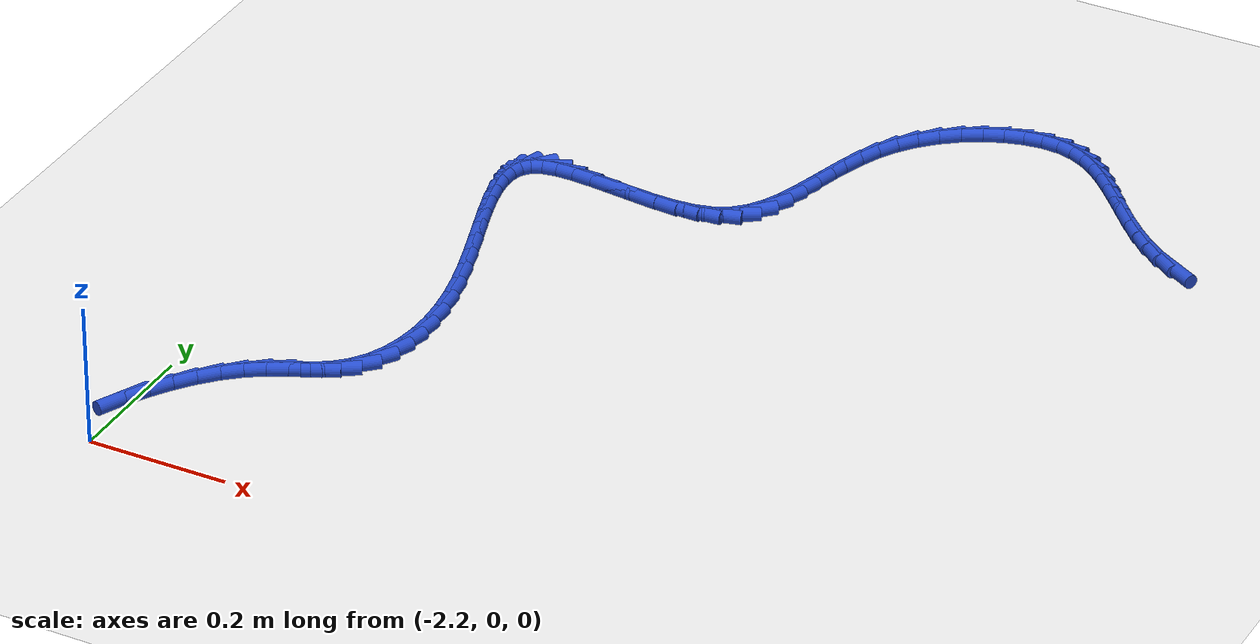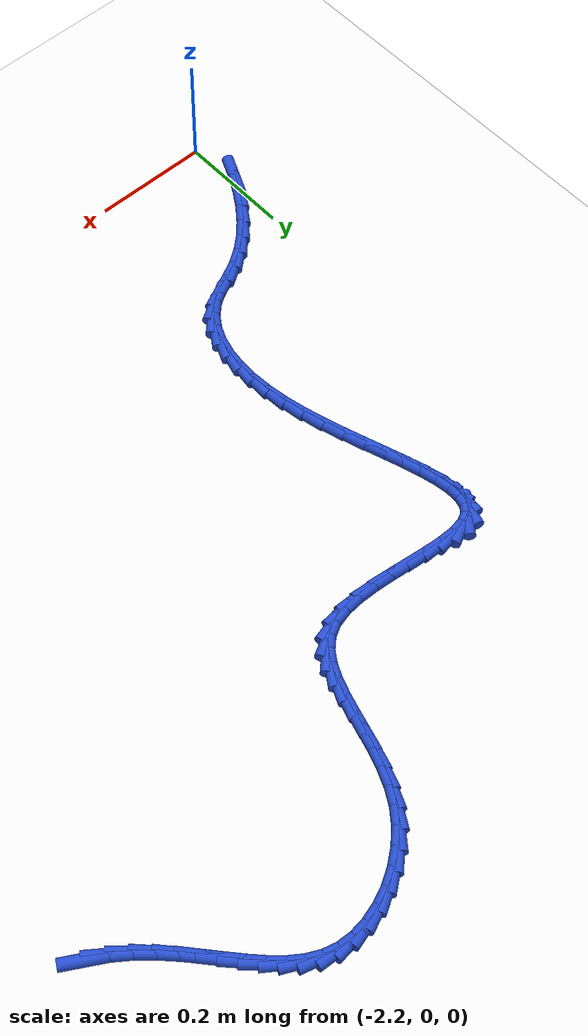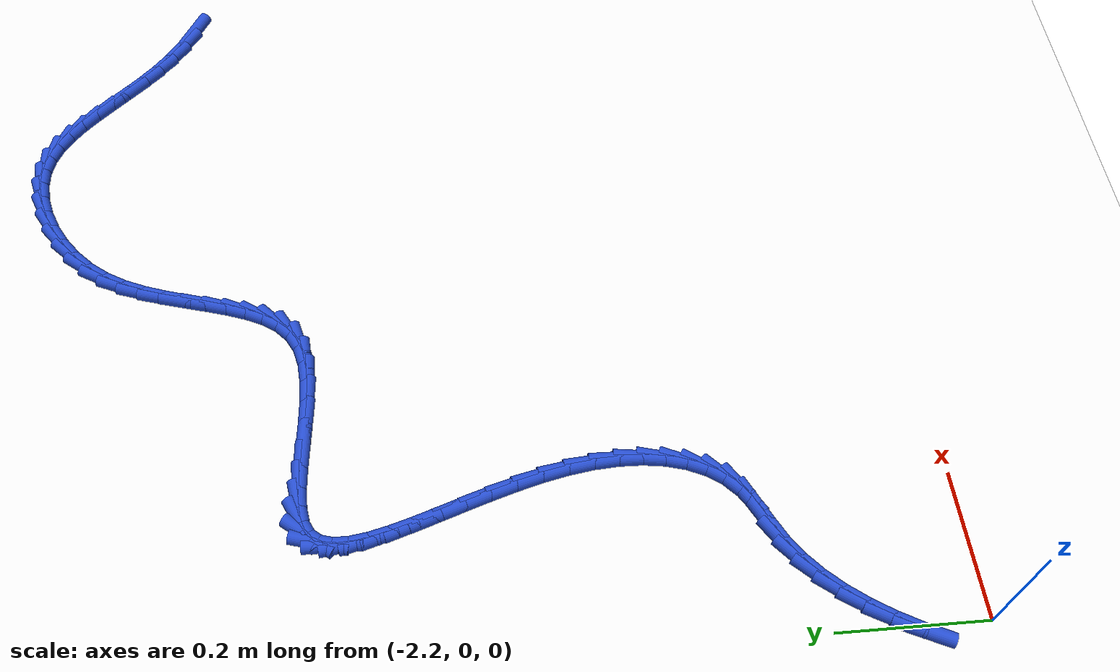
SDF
<sdf version="1.6">
 <world name="default">
  <model name="ground_plane">
   <static>1</static>
   <link name="link">
    <collision name="collision">
     <geometry><plane><normal>0 0 1</normal><size>100 100</size></plane></geometry>
     <surface><friction><ode><mu>100</mu><mu2>50</mu2></ode></friction></surface>
    </collision>
    <visual name="visual">
     <cast_shadows>0</cast_shadows>
     <geometry><plane><normal>0 0 1</normal><size>100 100</size></plane></geometry>
     <material>
      <script><uri>file://media/materials/scripts/gazebo.material</uri><name>Gazebo/WhiteGlow</name></script>
     </material>
    </visual>
   </link>
  </model>
  <model name="line">
   <link name="link_73">
    <pose>-1.1377716730741774 1.010143701158525 0.01 0 1.57 -0.5291703141802985</pose>
    <collision name="collision">
     <geometry><cylinder><radius>0.01</radius><length>0.08</length></cylinder></geometry>
    </collision>
    <visual name="visual">
     <material>
      <script><name>Gazebo/Blue</name><uri>file://media/materials/scripts/gazebo.material</uri></script>
     </material>
     <geometry><cylinder><radius>0.01</radius><length>0.08</length></cylinder></geometry>
    </visual>
   </link>
   <link name="link_74">
    <pose>-1.1661710005143981 1.0267517141214495 0.01 0 1.57 -0.6389277445847301</pose>
    <collision name="collision">
     <geometry><cylinder><radius>0.01</radius><length>0.08</length></cylinder></geometry>
    </collision>
    <visual name="visual">
     <material>
      <script><name>Gazebo/Blue</name><uri>file://media/materials/scripts/gazebo.material</uri></script>
     </material>
     <geometry><cylinder><radius>0.01</radius><length>0.08</length></cylinder></geometry>
    </visual>
   </link>
   <link name="link_75">
    <pose>-1.1919962044209704 1.0459367027506685 0.01 0 1.57 -0.7280658258280428</pose>
    <collision name="collision">
     <geometry><cylinder><radius>0.01</radius><length>0.08</length></cylinder></geometry>
    </collision>
    <visual name="visual">
     <material>
      <script><name>Gazebo/Blue</name><uri>file://media/materials/scripts/gazebo.material</uri></script>
     </material>
     <geometry><cylinder><radius>0.01</radius><length>0.08</length></cylinder></geometry>
    </visual>
   </link>
   <link name="link_76">
    <pose>-1.2156455946511369 1.067018723056404 0.01 0 1.57 -0.7937885537471916</pose>
    <collision name="collision">
     <geometry><cylinder><radius>0.01</radius><length>0.08</length></cylinder></geometry>
    </collision>
    <visual name="visual">
     <material>
      <script><name>Gazebo/Blue</name><uri>file://media/materials/scripts/gazebo.material</uri></script>
     </material>
     <geometry><cylinder><radius>0.01</radius><length>0.08</length></cylinder></geometry>
    </visual>
   </link>
   <link name="link_77">
    <pose>-1.2375544242406193 1.0892983194896944 0.01 0 1.57 -0.8354745881735959</pose>
    <collision name="collision">
     <geometry><cylinder><radius>0.01</radius><length>0.08</length></cylinder></geometry>
    </collision>
    <visual name="visual">
     <material>
      <script><name>Gazebo/Blue</name><uri>file://media/materials/scripts/gazebo.material</uri></script>
     </material>
     <geometry><cylinder><radius>0.01</radius><length>0.08</length></cylinder></geometry>
    </visual>
   </link>
   <link name="link_78">
    <pose>-1.2581579462251424 1.1120760365015798 0.01 0 1.57 -0.8524900523490971</pose>
    <collision name="collision">
     <geometry><cylinder><radius>0.01</radius><length>0.08</length></cylinder></geometry>
    </collision>
    <visual name="visual">
     <material>
      <script><name>Gazebo/Blue</name><uri>file://media/materials/scripts/gazebo.material</uri></script>
     </material>
     <geometry><cylinder><radius>0.01</radius><length>0.08</length></cylinder></geometry>
    </visual>
   </link>
   <link name="link_79">
    <pose>-1.2778914136404274 1.1346524185430966 0.01 0 1.57 -0.8433434416330472</pose>
    <collision name="collision">
     <geometry><cylinder><radius>0.01</radius><length>0.08</length></cylinder></geometry>
    </collision>
    <visual name="visual">
     <material>
      <script><name>Gazebo/Blue</name><uri>file://media/materials/scripts/gazebo.material</uri></script>
     </material>
     <geometry><cylinder><radius>0.01</radius><length>0.08</length></cylinder></geometry>
    </visual>
   </link>
   <link name="link_80">
    <pose>-1.297190079522197 1.1563280100652846 0.01 0 1.57 -0.8051096078013329</pose>
    <collision name="collision">
     <geometry><cylinder><radius>0.01</radius><length>0.08</length></cylinder></geometry>
    </collision>
    <visual name="visual">
     <material>
      <script><name>Gazebo/Blue</name><uri>file://media/materials/scripts/gazebo.material</uri></script>
     </material>
     <geometry><cylinder><radius>0.01</radius><length>0.08</length></cylinder></geometry>
    </visual>
   </link>
   <link name="link_81">
    <pose>-1.3164891969061745 1.176403355519182 0.01 0 1.57 -0.7332154081040344</pose>
    <collision name="collision">
     <geometry><cylinder><radius>0.01</radius><length>0.08</length></cylinder></geometry>
    </collision>
    <visual name="visual">
     <material>
      <script><name>Gazebo/Blue</name><uri>file://media/materials/scripts/gazebo.material</uri></script>
     </material>
     <geometry><cylinder><radius>0.01</radius><length>0.08</length></cylinder></geometry>
    </visual>
   </link>
   <link name="link_82">
    <pose>-1.3362240188280827 1.1941789993558274 0.01 0 1.57 -0.6221131544172135</pose>
    <collision name="collision">
     <geometry><cylinder><radius>0.01</radius><length>0.08</length></cylinder></geometry>
    </collision>
    <visual name="visual">
     <material>
      <script><name>Gazebo/Blue</name><uri>file://media/materials/scripts/gazebo.material</uri></script>
     </material>
     <geometry><cylinder><radius>0.01</radius><length>0.08</length></cylinder></geometry>
    </visual>
   </link>
   <link name="link_83">
    <pose>-1.356829798323644 1.208955486026259 0.01 0 1.57 -0.4680874627654028</pose>
    <collision name="collision">
     <geometry><cylinder><radius>0.01</radius><length>0.08</length></cylinder></geometry>
    </collision>
    <visual name="visual">
     <material>
      <script><name>Gazebo/Blue</name><uri>file://media/materials/scripts/gazebo.material</uri></script>
     </material>
     <geometry><cylinder><radius>0.01</radius><length>0.08</length></cylinder></geometry>
    </visual>
   </link>
   <link name="link_84">
    <pose>-1.3787417884285813 1.2200333599815159 0.01 0 1.57 -0.2752355873522919</pose>
    <collision name="collision">
     <geometry><cylinder><radius>0.01</radius><length>0.08</length></cylinder></geometry>
    </collision>
    <visual name="visual">
     <material>
      <script><name>Gazebo/Blue</name><uri>file://media/materials/scripts/gazebo.material</uri></script>
     </material>
     <geometry><cylinder><radius>0.01</radius><length>0.08</length></cylinder></geometry>
    </visual>
   </link>
   <link name="link_85">
    <pose>-1.4023952421786179 1.2267131656726367 0.01 0 1.57 -0.0679125623218019</pose>
    <collision name="collision">
     <geometry><cylinder><radius>0.01</radius><length>0.08</length></cylinder></geometry>
    </collision>
    <visual name="visual">
     <material>
      <script><name>Gazebo/Blue</name><uri>file://media/materials/scripts/gazebo.material</uri></script>
     </material>
     <geometry><cylinder><radius>0.01</radius><length>0.08</length></cylinder></geometry>
    </visual>
   </link>
   <link name="link_86">
    <pose>-1.428034095262341 1.228457047700716 0.01 0 1.57 0.11219825702227769</pose>
    <collision name="collision">
     <geometry><cylinder><radius>0.01</radius><length>0.08</length></cylinder></geometry>
    </collision>
    <visual name="visual">
     <material>
      <script><name>Gazebo/Blue</name><uri>file://media/materials/scripts/gazebo.material</uri></script>
     </material>
     <geometry><cylinder><radius>0.01</radius><length>0.08</length></cylinder></geometry>
    </visual>
   </link>
   <link name="link_87">
    <pose>-1.4550963424336887 1.2254079053288112 0.01 0 1.57 0.26498773636997586</pose>
    <collision name="collision">
     <geometry><cylinder><radius>0.01</radius><length>0.08</length></cylinder></geometry>
    </collision>
    <visual name="visual">
     <material>
      <script><name>Gazebo/Blue</name><uri>file://media/materials/scripts/gazebo.material</uri></script>
     </material>
     <geometry><cylinder><radius>0.01</radius><length>0.08</length></cylinder></geometry>
    </visual>
   </link>
   <link name="link_88">
    <pose>-1.4828077907036987 1.2178878665810215 0.01 0 1.57 0.40016728120694955</pose>
    <collision name="collision">
     <geometry><cylinder><radius>0.01</radius><length>0.08</length></cylinder></geometry>
    </collision>
    <visual name="visual">
     <material>
      <script><name>Gazebo/Blue</name><uri>file://media/materials/scripts/gazebo.material</uri></script>
     </material>
     <geometry><cylinder><radius>0.01</radius><length>0.08</length></cylinder></geometry>
    </visual>
   </link>
   <link name="link_89">
    <pose>-1.510394246047322 1.2062190603565983 0.01 0 1.57 0.5260555331266743</pose>
    <collision name="collision">
     <geometry><cylinder><radius>0.01</radius><length>0.08</length></cylinder></geometry>
    </collision>
    <visual name="visual">
     <material>
      <script><name>Gazebo/Blue</name><uri>file://media/materials/scripts/gazebo.material</uri></script>
     </material>
     <geometry><cylinder><radius>0.01</radius><length>0.08</length></cylinder></geometry>
    </visual>
   </link>
   <link name="link_90">
    <pose>-1.5370815144395094 1.1907236155547936 0.01 0 1.57 0.6496017822226671</pose>
    <collision name="collision">
     <geometry><cylinder><radius>0.01</radius><length>0.08</length></cylinder></geometry>
    </collision>
    <visual name="visual">
     <material>
      <script><name>Gazebo/Blue</name><uri>file://media/materials/scripts/gazebo.material</uri></script>
     </material>
     <geometry><cylinder><radius>0.01</radius><length>0.08</length></cylinder></geometry>
    </visual>
   </link>
   <link name="link_91">
    <pose>-1.5620954018552116 1.1717236610748585 0.01 0 1.57 0.7768176195879356</pose>
    <collision name="collision">
     <geometry><cylinder><radius>0.01</radius><length>0.08</length></cylinder></geometry>
    </collision>
    <visual name="visual">
     <material>
      <script><name>Gazebo/Blue</name><uri>file://media/materials/scripts/gazebo.material</uri></script>
     </material>
     <geometry><cylinder><radius>0.01</radius><length>0.08</length></cylinder></geometry>
    </visual>
   </link>
   <link name="link_92">
    <pose>-1.5846617142693786 1.1495413258160452 0.01 0 1.57 0.9130661441786372</pose>
    <collision name="collision">
     <geometry><cylinder><radius>0.01</radius><length>0.08</length></cylinder></geometry>
    </collision>
    <visual name="visual">
     <material>
      <script><name>Gazebo/Blue</name><uri>file://media/materials/scripts/gazebo.material</uri></script>
     </material>
     <geometry><cylinder><radius>0.01</radius><length>0.08</length></cylinder></geometry>
    </visual>
   </link>
   <link name="link_93">
    <pose>-1.604006432659625 1.1244987855724013 0.01 0 1.57 1.0522306613063315</pose>
    <collision name="collision">
     <geometry><cylinder><radius>0.01</radius><length>0.08</length></cylinder></geometry>
    </collision>
    <visual name="visual">
     <material>
      <script><name>Gazebo/Blue</name><uri>file://media/materials/scripts/gazebo.material</uri></script>
     </material>
     <geometry><cylinder><radius>0.01</radius><length>0.08</length></cylinder></geometry>
    </visual>
   </link>
   <link name="link_94">
    <pose>-1.619693802096249 1.0970088594764928 0.01 0 1.57 1.1628965667362776</pose>
    <collision name="collision">
     <geometry><cylinder><radius>0.01</radius><length>0.08</length></cylinder></geometry>
    </collision>
    <visual name="visual">
     <material>
      <script><name>Gazebo/Blue</name><uri>file://media/materials/scripts/gazebo.material</uri></script>
     </material>
     <geometry><cylinder><radius>0.01</radius><length>0.08</length></cylinder></geometry>
    </visual>
   </link>
   <link name="link_95">
    <pose>-1.6323315766809896 1.0677639917952988 0.01 0 1.57 1.2397936708424733</pose>
    <collision name="collision">
     <geometry><cylinder><radius>0.01</radius><length>0.08</length></cylinder></geometry>
    </collision>
    <visual name="visual">
     <material>
      <script><name>Gazebo/Blue</name><uri>file://media/materials/scripts/gazebo.material</uri></script>
     </material>
     <geometry><cylinder><radius>0.01</radius><length>0.08</length></cylinder></geometry>
    </visual>
   </link>
   <link name="link_96">
    <pose>-1.6427280965590259 1.0375103770726701 0.01 0 1.57 1.2850989451143071</pose>
    <collision name="collision">
     <geometry><cylinder><radius>0.01</radius><length>0.08</length></cylinder></geometry>
    </collision>
    <visual name="visual">
     <material>
      <script><name>Gazebo/Blue</name><uri>file://media/materials/scripts/gazebo.material</uri></script>
     </material>
     <geometry><cylinder><radius>0.01</radius><length>0.08</length></cylinder></geometry>
    </visual>
   </link>
   <link name="link_97">
    <pose>-1.651691701875538 1.0069942098524587 0.01 0 1.57 1.2999526392026173</pose>
    <collision name="collision">
     <geometry><cylinder><radius>0.01</radius><length>0.08</length></cylinder></geometry>
    </collision>
    <visual name="visual">
     <material>
      <script><name>Gazebo/Blue</name><uri>file://media/materials/scripts/gazebo.material</uri></script>
     </material>
     <geometry><cylinder><radius>0.01</radius><length>0.08</length></cylinder></geometry>
    </visual>
   </link>
   <link name="link_98">
    <pose>-1.6600307327757047 0.9769616846785142 0.01 0 1.57 1.2831026435063142</pose>
    <collision name="collision">
     <geometry><cylinder><radius>0.01</radius><length>0.08</length></cylinder></geometry>
    </collision>
    <visual name="visual">
     <material>
      <script><name>Gazebo/Blue</name><uri>file://media/materials/scripts/gazebo.material</uri></script>
     </material>
     <geometry><cylinder><radius>0.01</radius><length>0.08</length></cylinder></geometry>
    </visual>
   </link>
   <link name="link_99">
    <pose>-1.6685535294047065 0.9481589960946886 0.01 0 1.57 1.2299575588295677</pose>
    <collision name="collision">
     <geometry><cylinder><radius>0.01</radius><length>0.08</length></cylinder></geometry>
    </collision>
    <visual name="visual">
     <material>
      <script><name>Gazebo/Blue</name><uri>file://media/materials/scripts/gazebo.material</uri></script>
     </material>
     <geometry><cylinder><radius>0.01</radius><length>0.08</length></cylinder></geometry>
    </visual>
   </link>
   <link name="link_100">
    <pose>-1.678068431907722 0.921332338644832 0.01 0 1.57 1.1319022367469485</pose>
    <collision name="collision">
     <geometry><cylinder><radius>0.01</radius><length>0.08</length></cylinder></geometry>
    </collision>
    <visual name="visual">
     <material>
      <script><name>Gazebo/Blue</name><uri>file://media/materials/scripts/gazebo.material</uri></script>
     </material>
     <geometry><cylinder><radius>0.01</radius><length>0.08</length></cylinder></geometry>
    </visual>
   </link>
   <link name="link_101">
    <pose>-1.689383780429931 0.897227906872796 0.01 0 1.57 0.9772188972702817</pose>
    <collision name="collision">
     <geometry><cylinder><radius>0.01</radius><length>0.08</length></cylinder></geometry>
    </collision>
    <visual name="visual">
     <material>
      <script><name>Gazebo/Blue</name><uri>file://media/materials/scripts/gazebo.material</uri></script>
     </material>
     <geometry><cylinder><radius>0.01</radius><length>0.08</length></cylinder></geometry>
    </visual>
   </link>
   <link name="link_102">
    <pose>-1.7033079151165127 0.8765918953224315 0.01 0 1.57 0.7581598838678478</pose>
    <collision name="collision">
     <geometry><cylinder><radius>0.01</radius><length>0.08</length></cylinder></geometry>
    </collision>
    <visual name="visual">
     <material>
      <script><name>Gazebo/Blue</name><uri>file://media/materials/scripts/gazebo.material</uri></script>
     </material>
     <geometry><cylinder><radius>0.01</radius><length>0.08</length></cylinder></geometry>
    </visual>
   </link>
   <link name="link_103">
    <pose>-1.720649176112647 0.8601704985375895 0.01 0 1.57 0.48870775665935795</pose>
    <collision name="collision">
     <geometry><cylinder><radius>0.01</radius><length>0.08</length></cylinder></geometry>
    </collision>
    <visual name="visual">
     <material>
      <script><name>Gazebo/Blue</name><uri>file://media/materials/scripts/gazebo.material</uri></script>
     </material>
     <geometry><cylinder><radius>0.01</radius><length>0.08</length></cylinder></geometry>
    </visual>
   </link>
   <link name="link_104">
    <pose>-1.7422111058959737 0.8487053865791615 0.01 0 1.57 0.23930846050962265</pose>
    <collision name="collision">
     <geometry><cylinder><radius>0.01</radius><length>0.08</length></cylinder></geometry>
    </collision>
    <visual name="visual">
     <material>
      <script><name>Gazebo/Blue</name><uri>file://media/materials/scripts/gazebo.material</uri></script>
     </material>
     <geometry><cylinder><radius>0.01</radius><length>0.08</length></cylinder></geometry>
    </visual>
   </link>
   <link name="link_105">
    <pose>-1.7681911755950415 0.842366668542573 0.01 0 1.57 0.07351138348656047</pose>
    <collision name="collision">
     <geometry><cylinder><radius>0.01</radius><length>0.08</length></cylinder></geometry>
    </collision>
    <visual name="visual">
     <material>
      <script><name>Gazebo/Blue</name><uri>file://media/materials/scripts/gazebo.material</uri></script>
     </material>
     <geometry><cylinder><radius>0.01</radius><length>0.08</length></cylinder></geometry>
    </visual>
   </link>
   <link name="link_106">
    <pose>-1.7975957749724496 0.8402011936686257 0.01 0 1.57 -0.029133597090017935</pose>
    <collision name="collision">
     <geometry><cylinder><radius>0.01</radius><length>0.08</length></cylinder></geometry>
    </collision>
    <visual name="visual">
     <material>
      <script><name>Gazebo/Blue</name><uri>file://media/materials/scripts/gazebo.material</uri></script>
     </material>
     <geometry><cylinder><radius>0.01</radius><length>0.08</length></cylinder></geometry>
    </visual>
   </link>
   <link name="link_107">
    <pose>-1.8292924717186454 0.8411248938107417 0.01 0 1.57 -0.08890474475430889</pose>
    <collision name="collision">
     <geometry><cylinder><radius>0.01</radius><length>0.08</length></cylinder></geometry>
    </collision>
    <visual name="visual">
     <material>
      <script><name>Gazebo/Blue</name><uri>file://media/materials/scripts/gazebo.material</uri></script>
     </material>
     <geometry><cylinder><radius>0.01</radius><length>0.08</length></cylinder></geometry>
    </visual>
   </link>
   <link name="link_108">
    <pose>-1.862148833524075 0.8440537008223449 0.01 0 1.57 -0.11654442508154653</pose>
    <collision name="collision">
     <geometry><cylinder><radius>0.01</radius><length>0.08</length></cylinder></geometry>
    </collision>
    <visual name="visual">
     <material>
      <script><name>Gazebo/Blue</name><uri>file://media/materials/scripts/gazebo.material</uri></script>
     </material>
     <geometry><cylinder><radius>0.01</radius><length>0.08</length></cylinder></geometry>
    </visual>
   </link>
   <link name="link_109">
    <pose>-1.8950324280791855 0.8479035465568575 0.01 0 1.57 -0.11550008544488422</pose>
    <collision name="collision">
     <geometry><cylinder><radius>0.01</radius><length>0.08</length></cylinder></geometry>
    </collision>
    <visual name="visual">
     <material>
      <script><name>Gazebo/Blue</name><uri>file://media/materials/scripts/gazebo.material</uri></script>
     </material>
     <geometry><cylinder><radius>0.01</radius><length>0.08</length></cylinder></geometry>
    </visual>
   </link>
   <link name="link_110">
    <pose>-1.9268108230744228 0.8515903628677033 0.01 0 1.57 -0.0824012015688071</pose>
    <collision name="collision">
     <geometry><cylinder><radius>0.01</radius><length>0.08</length></cylinder></geometry>
    </collision>
    <visual name="visual">
     <material>
      <script><name>Gazebo/Blue</name><uri>file://media/materials/scripts/gazebo.material</uri></script>
     </material>
     <geometry><cylinder><radius>0.01</radius><length>0.08</length></cylinder></geometry>
    </visual>
   </link>
   <link name="link_111">
    <pose>-1.9563515862002336 0.8540300816083045 0.01 0 1.57 -0.004147860225591334</pose>
    <collision name="collision">
     <geometry><cylinder><radius>0.01</radius><length>0.08</length></cylinder></geometry>
    </collision>
    <visual name="visual">
     <material>
      <script><name>Gazebo/Blue</name><uri>file://media/materials/scripts/gazebo.material</uri></script>
     </material>
     <geometry><cylinder><radius>0.01</radius><length>0.08</length></cylinder></geometry>
    </visual>
   </link>
   <link name="link_112">
    <pose>-1.9825222851470647 0.8541386346320851 0.01 0 1.57 0.15143686277617685</pose>
    <collision name="collision">
     <geometry><cylinder><radius>0.01</radius><length>0.08</length></cylinder></geometry>
    </collision>
    <visual name="visual">
     <material>
      <script><name>Gazebo/Blue</name><uri>file://media/materials/scripts/gazebo.material</uri></script>
     </material>
     <geometry><cylinder><radius>0.01</radius><length>0.08</length></cylinder></geometry>
    </visual>
   </link>
   <link name="link_113">
    <pose>-2.0041904876053627 0.8508319537924668 0.01 0 1.57 0.45148331574570477</pose>
    <collision name="collision">
     <geometry><cylinder><radius>0.01</radius><length>0.08</length></cylinder></geometry>
    </collision>
    <visual name="visual">
     <material>
      <script><name>Gazebo/Blue</name><uri>file://media/materials/scripts/gazebo.material</uri></script>
     </material>
     <geometry><cylinder><radius>0.01</radius><length>0.08</length></cylinder></geometry>
    </visual>
   </link>
   <link name="link_114">
    <pose>-2.0202477103624323 0.8430460342551588 0.01 0 1.57 0.8953995065718137</pose>
    <collision name="collision">
     <geometry><cylinder><radius>0.01</radius><length>0.08</length></cylinder></geometry>
    </collision>
    <visual name="visual">
     <material>
      <script><name>Gazebo/Blue</name><uri>file://media/materials/scripts/gazebo.material</uri></script>
     </material>
     <geometry><cylinder><radius>0.01</radius><length>0.08</length></cylinder></geometry>
    </visual>
   </link>
   <link name="link_115">
    <pose>-2.0303872866230743 0.8303885914296413 0.01 0 1.57 1.2924898773404387</pose>
    <collision name="collision">
     <geometry><cylinder><radius>0.01</radius><length>0.08</length></cylinder></geometry>
    </collision>
    <visual name="visual">
     <material>
      <script><name>Gazebo/Blue</name><uri>file://media/materials/scripts/gazebo.material</uri></script>
     </material>
     <geometry><cylinder><radius>0.01</radius><length>0.08</length></cylinder></geometry>
    </visual>
   </link>
   <link name="link_116">
    <pose>-2.035275005782029 0.8132820141278225 0.01 0 1.57 1.5537176633979721</pose>
    <collision name="collision">
     <geometry><cylinder><radius>0.01</radius><length>0.08</length></cylinder></geometry>
    </collision>
    <visual name="visual">
     <material>
      <script><name>Gazebo/Blue</name><uri>file://media/materials/scripts/gazebo.material</uri></script>
     </material>
     <geometry><cylinder><radius>0.01</radius><length>0.08</length></cylinder></geometry>
    </visual>
   </link>
   <link name="link_117">
    <pose>-2.035635133056376 0.7921976791752984 0.01 0 1.57 -1.4316804758875932</pose>
    <collision name="collision">
     <geometry><cylinder><radius>0.01</radius><length>0.08</length></cylinder></geometry>
    </collision>
    <visual name="visual">
     <material>
      <script><name>Gazebo/Blue</name><uri>file://media/materials/scripts/gazebo.material</uri></script>
     </material>
     <geometry><cylinder><radius>0.01</radius><length>0.08</length></cylinder></geometry>
    </visual>
   </link>
   <link name="link_118">
    <pose>-2.032191933663193 0.7676069633976659 0.01 0 1.57 -1.3389480738570347</pose>
    <collision name="collision">
     <geometry><cylinder><radius>0.01</radius><length>0.08</length></cylinder></geometry>
    </collision>
    <visual name="visual">
     <material>
      <script><name>Gazebo/Blue</name><uri>file://media/materials/scripts/gazebo.material</uri></script>
     </material>
     <geometry><cylinder><radius>0.01</radius><length>0.08</length></cylinder></geometry>
    </visual>
   </link>
   <link name="link_119">
    <pose>-2.0256696728195602 0.7399812436205213 0.01 0 1.57 -1.2848108179512254</pose>
    <collision name="collision">
     <geometry><cylinder><radius>0.01</radius><length>0.08</length></cylinder></geometry>
    </collision>
    <visual name="visual">
     <material>
      <script><name>Gazebo/Blue</name><uri>file://media/materials/scripts/gazebo.material</uri></script>
     </material>
     <geometry><cylinder><radius>0.01</radius><length>0.08</length></cylinder></geometry>
    </visual>
   </link>
   <link name="link_120">
    <pose>-2.016792615742556 0.7097918966694611 0.01 0 1.57 -1.2561142731755144</pose>
    <collision name="collision">
     <geometry><cylinder><radius>0.01</radius><length>0.08</length></cylinder></geometry>
    </collision>
    <visual name="visual">
     <material>
      <script><name>Gazebo/Blue</name><uri>file://media/materials/scripts/gazebo.material</uri></script>
     </material>
     <geometry><cylinder><radius>0.01</radius><length>0.08</length></cylinder></geometry>
    </visual>
   </link>
   <link name="link_121">
    <pose>-2.006285027649259 0.6775102993700812 0.01 0 1.57 -1.2460481942176413</pose>
    <collision name="collision">
     <geometry><cylinder><radius>0.01</radius><length>0.08</length></cylinder></geometry>
    </collision>
    <visual name="visual">
     <material>
      <script><name>Gazebo/Blue</name><uri>file://media/materials/scripts/gazebo.material</uri></script>
     </material>
     <geometry><cylinder><radius>0.01</radius><length>0.08</length></cylinder></geometry>
    </visual>
   </link>
   <link name="link_122">
    <pose>-1.9948711737567473 0.643607828547978 0.01 0 1.57 -1.251310437616102</pose>
    <collision name="collision">
     <geometry><cylinder><radius>0.01</radius><length>0.08</length></cylinder></geometry>
    </collision>
    <visual name="visual">
     <material>
      <script><name>Gazebo/Blue</name><uri>file://media/materials/scripts/gazebo.material</uri></script>
     </material>
     <geometry><cylinder><radius>0.01</radius><length>0.08</length></cylinder></geometry>
    </visual>
   </link>
   <link name="link_123">
    <pose>-1.9832753192821013 0.6085558610287491 0.01 0 1.57 -1.2707713300149894</pose>
    <collision name="collision">
     <geometry><cylinder><radius>0.01</radius><length>0.08</length></cylinder></geometry>
    </collision>
    <visual name="visual">
     <material>
      <script><name>Gazebo/Blue</name><uri>file://media/materials/scripts/gazebo.material</uri></script>
     </material>
     <geometry><cylinder><radius>0.01</radius><length>0.08</length></cylinder></geometry>
    </visual>
   </link>
   <link name="link_124">
    <pose>-1.9722217294423987 0.5728257736379898 0.01 0 1.57 -1.3049041635913308</pose>
    <collision name="collision">
     <geometry><cylinder><radius>0.01</radius><length>0.08</length></cylinder></geometry>
    </collision>
    <visual name="visual">
     <material>
      <script><name>Gazebo/Blue</name><uri>file://media/materials/scripts/gazebo.material</uri></script>
     </material>
     <geometry><cylinder><radius>0.01</radius><length>0.08</length></cylinder></geometry>
    </visual>
   </link>
   <link name="link_125">
    <pose>-1.9624346694547188 0.5368889432012969 0.01 0 1.57 -1.3556266566789654</pose>
    <collision name="collision">
     <geometry><cylinder><radius>0.01</radius><length>0.08</length></cylinder></geometry>
    </collision>
    <visual name="visual">
     <material>
      <script><name>Gazebo/Blue</name><uri>file://media/materials/scripts/gazebo.material</uri></script>
     </material>
     <geometry><cylinder><radius>0.01</radius><length>0.08</length></cylinder></geometry>
    </visual>
   </link>
   <link name="link_126">
    <pose>-1.9546384045361402 0.5012167465442661 0.01 0 1.57 -1.424356072851804</pose>
    <collision name="collision">
     <geometry><cylinder><radius>0.01</radius><length>0.08</length></cylinder></geometry>
    </collision>
    <visual name="visual">
     <material>
      <script><name>Gazebo/Blue</name><uri>file://media/materials/scripts/gazebo.material</uri></script>
     </material>
     <geometry><cylinder><radius>0.01</radius><length>0.08</length></cylinder></geometry>
    </visual>
   </link>
   <link name="link_127">
    <pose>-1.9494845394626352 0.4662743652966389 0.01 0 1.57 -1.5050377463976208</pose>
    <collision name="collision">
     <geometry><cylinder><radius>0.01</radius><length>0.08</length></cylinder></geometry>
    </collision>
    <visual name="visual">
     <material>
      <script><name>Gazebo/Blue</name><uri>file://media/materials/scripts/gazebo.material</uri></script>
     </material>
     <geometry><cylinder><radius>0.01</radius><length>0.08</length></cylinder></geometry>
    </visual>
   </link>
   <link name="link_128">
    <pose>-1.9472601081221115 0.432495896938093 0.01 0 1.57 1.5435296195042332</pose>
    <collision name="collision">
     <geometry><cylinder><radius>0.01</radius><length>0.08</length></cylinder></geometry>
    </collision>
    <visual name="visual">
     <material>
      <script><name>Gazebo/Blue</name><uri>file://media/materials/scripts/gazebo.material</uri></script>
     </material>
     <geometry><cylinder><radius>0.01</radius><length>0.08</length></cylinder></geometry>
    </visual>
   </link>
   <link name="link_129">
    <pose>-1.9481380460941289 0.40030571066485093 0.01 0 1.57 1.4340298379702354</pose>
    <collision name="collision">
     <geometry><cylinder><radius>0.01</radius><length>0.08</length></cylinder></geometry>
    </collision>
    <visual name="visual">
     <material>
      <script><name>Gazebo/Blue</name><uri>file://media/materials/scripts/gazebo.material</uri></script>
     </material>
     <geometry><cylinder><radius>0.01</radius><length>0.08</length></cylinder></geometry>
    </visual>
   </link>
   <link name="link_130">
    <pose>-1.952291249728001 0.370128172328275 0.01 0 1.57 1.3033445568919941</pose>
    <collision name="collision">
     <geometry><cylinder><radius>0.01</radius><length>0.08</length></cylinder></geometry>
    </collision>
    <visual name="visual">
     <material>
      <script><name>Gazebo/Blue</name><uri>file://media/materials/scripts/gazebo.material</uri></script>
     </material>
     <geometry><cylinder><radius>0.01</radius><length>0.08</length></cylinder></geometry>
    </visual>
   </link>
   <link name="link_131">
    <pose>-1.9598926153730394 0.34238764777972686 0.01 0 1.57 1.147046661476189</pose>
    <collision name="collision">
     <geometry><cylinder><radius>0.01</radius><length>0.08</length></cylinder></geometry>
    </collision>
    <visual name="visual">
     <material>
      <script><name>Gazebo/Blue</name><uri>file://media/materials/scripts/gazebo.material</uri></script>
     </material>
     <geometry><cylinder><radius>0.01</radius><length>0.08</length></cylinder></geometry>
    </visual>
   </link>
   <link name="link_132">
    <pose>-1.9711150393785573 0.3175085028705693 0.01 0 1.57 0.9631540248119422</pose>
    <collision name="collision">
     <geometry><cylinder><radius>0.01</radius><length>0.08</length></cylinder></geometry>
    </collision>
    <visual name="visual">
     <material>
      <script><name>Gazebo/Blue</name><uri>file://media/materials/scripts/gazebo.material</uri></script>
     </material>
     <geometry><cylinder><radius>0.01</radius><length>0.08</length></cylinder></geometry>
    </visual>
   </link>
   <link name="link_133">
    <pose>-1.9861314180938663 0.2959151034521641 0.01 0 1.57 0.7555712213247022</pose>
    <collision name="collision">
     <geometry><cylinder><radius>0.01</radius><length>0.08</length></cylinder></geometry>
    </collision>
    <visual name="visual">
     <material>
      <script><name>Gazebo/Blue</name><uri>file://media/materials/scripts/gazebo.material</uri></script>
     </material>
     <geometry><cylinder><radius>0.01</radius><length>0.08</length></cylinder></geometry>
    </visual>
   </link>
   <link name="link_134">
    <pose>-2.0051146478682793 0.2780318153758731 0.01 0 1.57 0.5466165193134054</pose>
    <collision name="collision">
     <geometry><cylinder><radius>0.01</radius><length>0.08</length></cylinder></geometry>
    </collision>
    <visual name="visual">
     <material>
      <script><name>Gazebo/Blue</name><uri>file://media/materials/scripts/gazebo.material</uri></script>
     </material>
     <geometry><cylinder><radius>0.01</radius><length>0.08</length></cylinder></geometry>
    </visual>
   </link>
   <link name="link_135">
    <pose>-2.0280892612225916 0.2640526934279457 0.01 0 1.57 0.4381985211334929</pose>
    <collision name="collision">
     <geometry><cylinder><radius>0.01</radius><length>0.08</length></cylinder></geometry>
    </collision>
    <visual name="visual">
     <material>
      <script><name>Gazebo/Blue</name><uri>file://media/materials/scripts/gazebo.material</uri></script>
     </material>
     <geometry><cylinder><radius>0.01</radius><length>0.08</length></cylinder></geometry>
    </visual>
   </link>
   <link name="link_136">
    <pose>-2.0537109271465566 0.25204685115405057 0.01 0 1.57 0.46419233888767414</pose>
    <collision name="collision">
     <geometry><cylinder><radius>0.01</radius><length>0.08</length></cylinder></geometry>
    </collision>
    <visual name="visual">
     <material>
      <script><name>Gazebo/Blue</name><uri>file://media/materials/scripts/gazebo.material</uri></script>
     </material>
     <geometry><cylinder><radius>0.01</radius><length>0.08</length></cylinder></geometry>
    </visual>
   </link>
   <link name="link_137">
    <pose>-2.079896353970154 0.23893630290216367 0.01 0 1.57 0.5846215376345661</pose>
    <collision name="collision">
     <geometry><cylinder><radius>0.01</radius><length>0.08</length></cylinder></geometry>
    </collision>
    <visual name="visual">
     <material>
      <script><name>Gazebo/Blue</name><uri>file://media/materials/scripts/gazebo.material</uri></script>
     </material>
     <geometry><cylinder><radius>0.01</radius><length>0.08</length></cylinder></geometry>
    </visual>
   </link>
   <link name="link_138">
    <pose>-2.104974445296353 0.22233977579813693 0.01 0 1.57 0.7068827894159843</pose>
    <collision name="collision">
     <geometry><cylinder><radius>0.01</radius><length>0.08</length></cylinder></geometry>
    </collision>
    <visual name="visual">
     <material>
      <script><name>Gazebo/Blue</name><uri>file://media/materials/scripts/gazebo.material</uri></script>
     </material>
     <geometry><cylinder><radius>0.01</radius><length>0.08</length></cylinder></geometry>
    </visual>
   </link>
   <link name="link_139">
    <pose>-2.128618371174189 0.20214495588210626 0.01 0 1.57 0.8138985252832395</pose>
    <collision name="collision">
     <geometry><cylinder><radius>0.01</radius><length>0.08</length></cylinder></geometry>
    </collision>
    <visual name="visual">
     <material>
      <script><name>Gazebo/Blue</name><uri>file://media/materials/scripts/gazebo.material</uri></script>
     </material>
     <geometry><cylinder><radius>0.01</radius><length>0.08</length></cylinder></geometry>
    </visual>
   </link>
   <link name="link_140">
    <pose>-2.150770074433177 0.17869318508807075 0.01 0 1.57 0.9075483988893425</pose>
    <collision name="collision">
     <geometry><cylinder><radius>0.01</radius><length>0.08</length></cylinder></geometry>
    </collision>
    <visual name="visual">
     <material>
      <script><name>Gazebo/Blue</name><uri>file://media/materials/scripts/gazebo.material</uri></script>
     </material>
     <geometry><cylinder><radius>0.01</radius><length>0.08</length></cylinder></geometry>
    </visual>
   </link>
   <link name="link_141">
    <pose>-2.171371497902828 0.15232580535003068 0.01 0 1.57 0.9900368134951684</pose>
    <collision name="collision">
     <geometry><cylinder><radius>0.01</radius><length>0.08</length></cylinder></geometry>
    </collision>
    <visual name="visual">
     <material>
      <script><name>Gazebo/Blue</name><uri>file://media/materials/scripts/gazebo.material</uri></script>
     </material>
     <geometry><cylinder><radius>0.01</radius><length>0.08</length></cylinder></geometry>
    </visual>
   </link>
   <link name="link_142">
    <pose>-2.1903645844126554 0.1233841586019852 0.01 0 1.57 1.0635143489572394</pose>
    <collision name="collision">
     <geometry><cylinder><radius>0.01</radius><length>0.08</length></cylinder></geometry>
    </collision>
    <visual name="visual">
     <material>
      <script><name>Gazebo/Blue</name><uri>file://media/materials/scripts/gazebo.material</uri></script>
     </material>
     <geometry><cylinder><radius>0.01</radius><length>0.08</length></cylinder></geometry>
    </visual>
   </link>
   <link name="link_143">
    <pose>-2.2076912767921706 0.09220958677793396 0.01 0 1.57 1.1299218405912355</pose>
    <collision name="collision">
     <geometry><cylinder><radius>0.01</radius><length>0.08</length></cylinder></geometry>
    </collision>
    <visual name="visual">
     <material>
      <script><name>Gazebo/Blue</name><uri>file://media/materials/scripts/gazebo.material</uri></script>
     </material>
     <geometry><cylinder><radius>0.01</radius><length>0.08</length></cylinder></geometry>
    </visual>
   </link>
  </model>
 </world>
</sdf>
